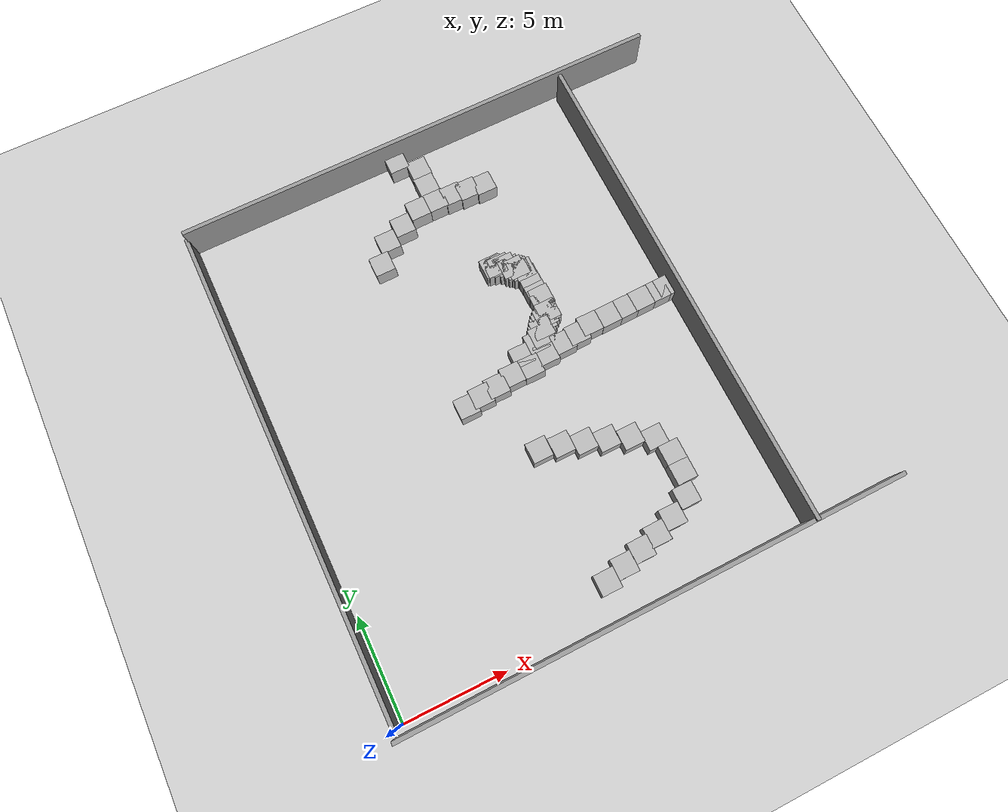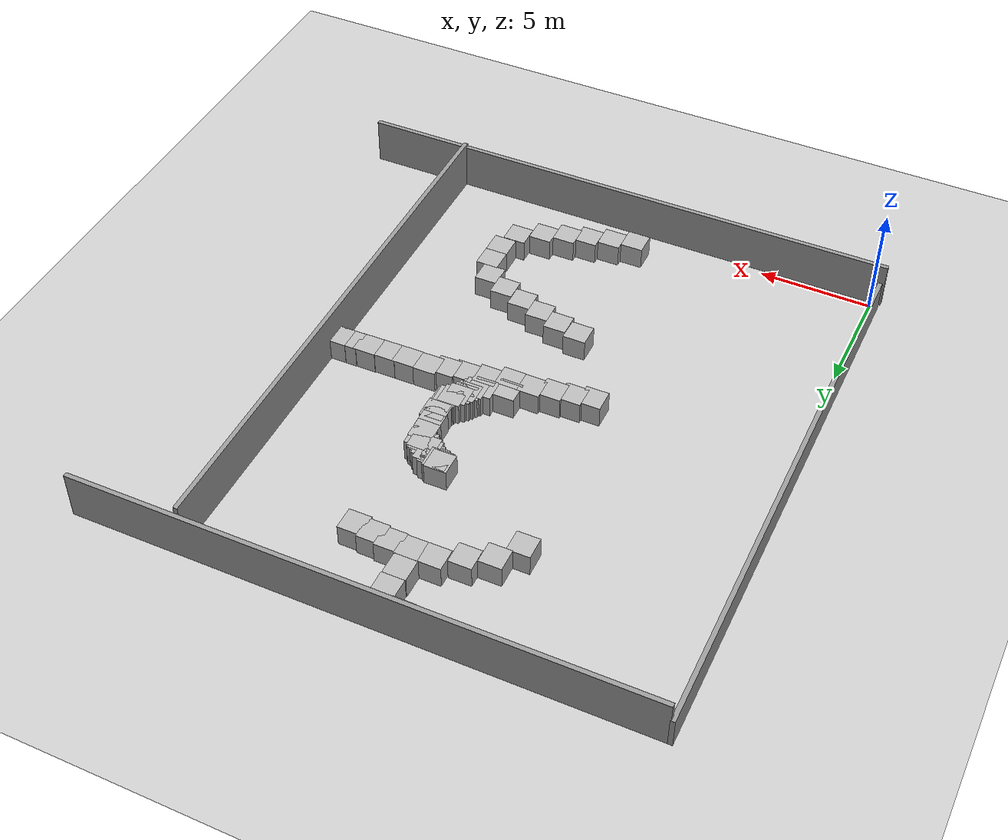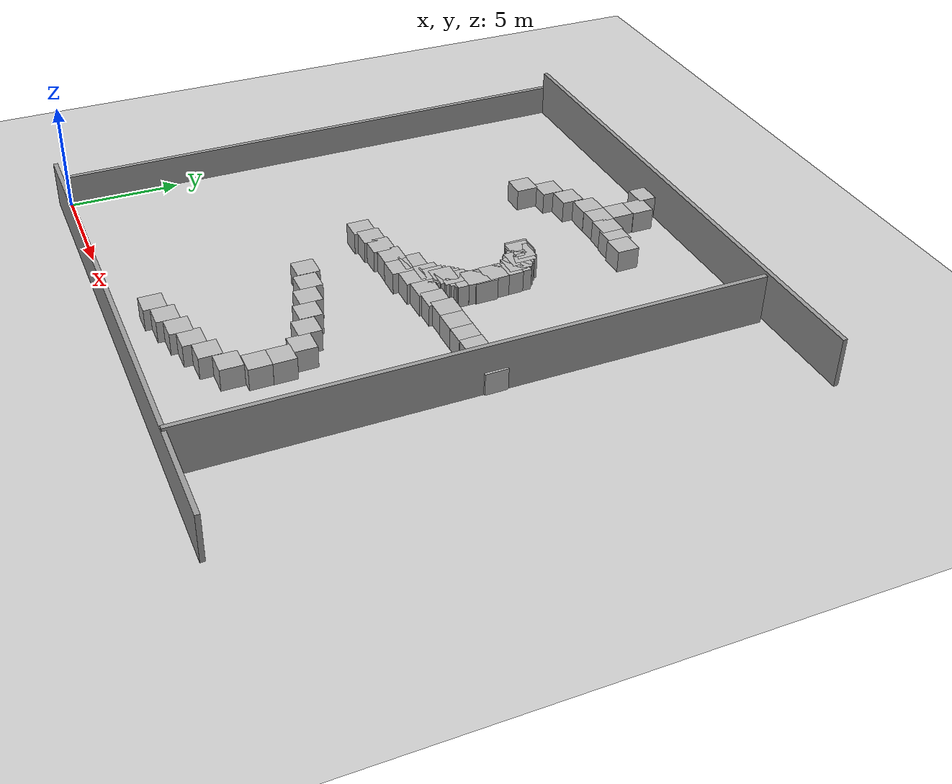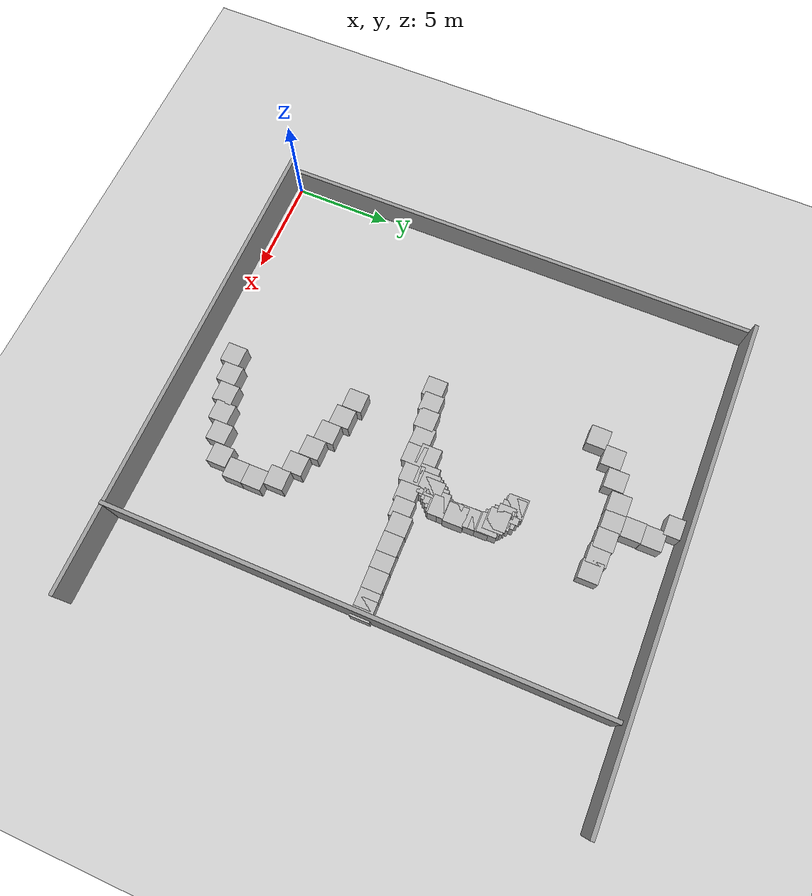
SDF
<sdf version="1.6">
 <world name="default">
  <light name="sun" type="directional">
   <pose>0 0 10 0 -0 0</pose>
   <diffuse>0.8 0.8 0.8 1</diffuse>
   <specular>0.2 0.2 0.2 1</specular>
   <attenuation>
    <range>1000</range>
    <constant>0.9</constant>
    <linear>0.01</linear>
    <quadratic>0.001</quadratic>
   </attenuation>
   <direction>-0.5 0.1 -0.9</direction>
  </light>
  <model name="ground_plane">
   <static>1</static>
   <link name="link">
    <collision name="collision">
     <geometry><plane><normal>0 0 1</normal><size>100 100</size></plane></geometry>
     <surface><friction><ode><mu>50</mu><mu2>25</mu2></ode></friction></surface>
    </collision>
    <visual name="visual">
     <cast_shadows>0</cast_shadows>
     <geometry><plane><normal>0 0 1</normal><size>100 100</size></plane></geometry>
     <material>
      <script><uri>file://media/materials/scripts/gazebo.material</uri><name>Gazebo/Grey</name></script>
     </material>
    </visual>
    <velocity_decay><linear>0</linear><angular>0</angular></velocity_decay>
   </link>
  </model>
  <physics name="default_physics" default="0" type="ode">
   <max_step_size>0.001</max_step_size>
   <real_time_factor>1</real_time_factor>
   <real_time_update_rate>1000</real_time_update_rate>
  </physics>
  <scene><ambient>0.4 0.4 0.4 1</ambient><background>0.7 0.7 0.7 1</background><shadows>0</shadows></scene>
  <spherical_coordinates>
   <surface_model>EARTH_WGS84</surface_model>
   <latitude_deg>0</latitude_deg>
   <longitude_deg>0</longitude_deg>
   <elevation>0</elevation>
   <heading_deg>0</heading_deg>
  </spherical_coordinates>
  <gravity>0 0 -9.8</gravity>
  <magnetic_field>6e-06 2.3e-05 -4.2e-05</magnetic_field>
  <atmosphere type="adiabatic"/>
  <model name="grey_wall_6_0_clone">
   <link name="link">
    <pose>11.2261 0.490097 1.4 0 -0 0</pose>
    <velocity_decay><linear>0</linear><angular>0</angular></velocity_decay>
    <inertial>
     <inertia><ixx>nan</ixx><ixy>0</ixy><ixz>0</ixz><iyy>nan</iyy><iyz>0</iyz><izz>nan</izz></inertia>
     <mass>0</mass>
    </inertial>
    <visual name="visual">
     <cast_shadows>0</cast_shadows>
     <geometry><box><size>24.8883 0.2 2.63649</size></box></geometry>
     <material>
      <script>
       <uri>model://grey_wall/materials/scripts</uri>
       <uri>model://grey_wall/materials/textures</uri>
       <name>vrc/grey_wall</name>
      </script>
      <ambient>1 1 1 1</ambient>
      <diffuse>1 1 1 1</diffuse>
      <specular>0 0 0 1</specular>
      <emissive>0 0 0 1</emissive>
     </material>
    </visual>
    <collision name="collision">
     <geometry><box><size>24.8883 0.2 2.63649</size></box></geometry>
     <surface>
      <friction>
       <ode><mu>1</mu><mu2>1</mu2><fdir1>0 0 0</fdir1><slip1>0</slip1><slip2>0</slip2></ode>
       <torsional>
        <coefficient>1</coefficient>
        <patch_radius>0</patch_radius>
        <surface_radius>0</surface_radius>
        <use_patch_radius>1</use_patch_radius>
        <ode><slip>0</slip></ode>
       </torsional>
      </friction>
      <bounce><restitution_coefficient>0</restitution_coefficient><threshold>1e+06</threshold></bounce>
      <contact>
       <collide_without_contact>0</collide_without_contact>
       <collide_without_contact_bitmask>1</collide_without_contact_bitmask>
       <collide_bitmask>1</collide_bitmask>
       <ode>
        <soft_cfm>0</soft_cfm>
        <soft_erp>0.2</soft_erp>
        <kp>1e+13</kp>
        <kd>1</kd>
        <max_vel>0.01</max_vel>
        <min_depth>0</min_depth>
       </ode>
       <bullet>
        <split_impulse>1</split_impulse>
        <split_impulse_penetration_threshold>-0.01</split_impulse_penetration_threshold>
        <soft_cfm>0</soft_cfm>
        <soft_erp>0.2</soft_erp>
        <kp>1e+13</kp>
        <kd>1</kd>
       </bullet>
      </contact>
     </surface>
    </collision>
   </link>
   <static>1</static>
   <pose>0.225116 1.13719 -1.33094 0 -0 1.57597</pose>
  </model>
  <model name="grey_wall_6_0_clone_0">
   <link name="link">
    <pose>11.2261 0.490097 1.4 0 -0 0</pose>
    <velocity_decay><linear>0</linear><angular>0</angular></velocity_decay>
    <inertial>
     <inertia><ixx>nan</ixx><ixy>0</ixy><ixz>0</ixz><iyy>nan</iyy><iyz>0</iyz><izz>nan</izz></inertia>
     <mass>0</mass>
    </inertial>
    <visual name="visual">
     <cast_shadows>0</cast_shadows>
     <geometry><box><size>24.8883 0.2 2.63649</size></box></geometry>
     <material>
      <script>
       <uri>model://grey_wall/materials/scripts</uri>
       <uri>model://grey_wall/materials/textures</uri>
       <name>vrc/grey_wall</name>
      </script>
      <ambient>1 1 1 1</ambient>
      <diffuse>1 1 1 1</diffuse>
      <specular>0 0 0 1</specular>
      <emissive>0 0 0 1</emissive>
     </material>
    </visual>
    <collision name="collision">
     <geometry><box><size>24.8883 0.2 2.63649</size></box></geometry>
     <surface>
      <friction>
       <ode><mu>1</mu><mu2>1</mu2><fdir1>0 0 0</fdir1><slip1>0</slip1><slip2>0</slip2></ode>
       <torsional>
        <coefficient>1</coefficient>
        <patch_radius>0</patch_radius>
        <surface_radius>0</surface_radius>
        <use_patch_radius>1</use_patch_radius>
        <ode><slip>0</slip></ode>
       </torsional>
      </friction>
      <bounce><restitution_coefficient>0</restitution_coefficient><threshold>1e+06</threshold></bounce>
      <contact>
       <collide_without_contact>0</collide_without_contact>
       <collide_without_contact_bitmask>1</collide_without_contact_bitmask>
       <collide_bitmask>1</collide_bitmask>
       <ode>
        <soft_cfm>0</soft_cfm>
        <soft_erp>0.2</soft_erp>
        <kp>1e+13</kp>
        <kd>1</kd>
        <max_vel>0.01</max_vel>
        <min_depth>0</min_depth>
       </ode>
       <bullet>
        <split_impulse>1</split_impulse>
        <split_impulse_penetration_threshold>-0.01</split_impulse_penetration_threshold>
        <soft_cfm>0</soft_cfm>
        <soft_erp>0.2</soft_erp>
        <kp>1e+13</kp>
        <kd>1</kd>
       </bullet>
      </contact>
     </surface>
    </collision>
   </link>
   <static>1</static>
   <pose>23.3321 25.3557 -0.538015 0 0 -3.13457</pose>
  </model>
  <model name="grey_wall_6_0_clone_clone">
   <link name="link">
    <pose>11.2261 0.490097 1.4 0 -0 0</pose>
    <velocity_decay><linear>0</linear><angular>0</angular></velocity_decay>
    <inertial>
     <inertia><ixx>nan</ixx><ixy>0</ixy><ixz>0</ixz><iyy>nan</iyy><iyz>0</iyz><izz>nan</izz></inertia>
     <mass>0</mass>
    </inertial>
    <visual name="visual">
     <cast_shadows>0</cast_shadows>
     <geometry><box><size>24.8883 0.2 2.63649</size></box></geometry>
     <material>
      <script>
       <uri>model://grey_wall/materials/scripts</uri>
       <uri>model://grey_wall/materials/textures</uri>
       <name>vrc/grey_wall</name>
      </script>
      <ambient>1 1 1 1</ambient>
      <diffuse>1 1 1 1</diffuse>
      <specular>0 0 0 1</specular>
      <emissive>0 0 0 1</emissive>
     </material>
    </visual>
    <collision name="collision">
     <geometry><box><size>24.8883 0.2 2.63649</size></box></geometry>
     <surface>
      <friction>
       <ode><mu>1</mu><mu2>1</mu2><fdir1>0 0 0</fdir1><slip1>0</slip1><slip2>0</slip2></ode>
       <torsional>
        <coefficient>1</coefficient>
        <patch_radius>0</patch_radius>
        <surface_radius>0</surface_radius>
        <use_patch_radius>1</use_patch_radius>
        <ode><slip>0</slip></ode>
       </torsional>
      </friction>
      <bounce><restitution_coefficient>0</restitution_coefficient><threshold>1e+06</threshold></bounce>
      <contact>
       <collide_without_contact>0</collide_without_contact>
       <collide_without_contact_bitmask>1</collide_without_contact_bitmask>
       <collide_bitmask>1</collide_bitmask>
       <ode>
        <soft_cfm>0</soft_cfm>
        <soft_erp>0.2</soft_erp>
        <kp>1e+13</kp>
        <kd>1</kd>
        <max_vel>0.01</max_vel>
        <min_depth>0</min_depth>
       </ode>
       <bullet>
        <split_impulse>1</split_impulse>
        <split_impulse_penetration_threshold>-0.01</split_impulse_penetration_threshold>
        <soft_cfm>0</soft_cfm>
        <soft_erp>0.2</soft_erp>
        <kp>1e+13</kp>
        <kd>1</kd>
       </bullet>
      </contact>
     </surface>
    </collision>
   </link>
   <static>1</static>
   <pose>20.3989 0.883186 -0.494414 0 -0 1.57597</pose>
  </model>
  <model name="obby_clone_clone_1_clone_clone_0">
   <pose>10.5723 1.42444 0.5 0 -0 0.007022</pose>
   <static>1</static>
   <link name="link">
    <inertial>
     <mass>1</mass>
     <inertia><ixx>0.083</ixx><ixy>0</ixy><ixz>0</ixz><iyy>0.083</iyy><iyz>0</iyz><izz>0.083</izz></inertia>
    </inertial>
    <collision name="collision"><geometry><box><size>1 1 1</size></box></geometry></collision>
    <visual name="visual"><geometry><box><size>1 1 1</size></box></geometry></visual>
   </link>
  </model>
  <model name="obby_clone_clone_1_clone_clone_1">
   <pose>11.5702 1.71606 0.5 0 -0 0.007022</pose>
   <static>1</static>
   <link name="link">
    <inertial>
     <mass>1</mass>
     <inertia><ixx>0.083</ixx><ixy>0</ixy><ixz>0</ixz><iyy>0.083</iyy><iyz>0</iyz><izz>0.083</izz></inertia>
    </inertial>
    <collision name="collision"><geometry><box><size>1 1 1</size></box></geometry></collision>
    <visual name="visual"><geometry><box><size>1 1 1</size></box></geometry></visual>
   </link>
  </model>
  <model name="obby_clone_clone_1_clone_clone_2">
   <pose>12.5711 2.00742 0.5 0 -0 0.007022</pose>
   <static>1</static>
   <link name="link">
    <inertial>
     <mass>1</mass>
     <inertia><ixx>0.083</ixx><ixy>0</ixy><ixz>0</ixz><iyy>0.083</iyy><iyz>0</iyz><izz>0.083</izz></inertia>
    </inertial>
    <collision name="collision"><geometry><box><size>1 1 1</size></box></geometry></collision>
    <visual name="visual"><geometry><box><size>1 1 1</size></box></geometry></visual>
   </link>
  </model>
  <model name="obby_clone_clone_1_clone_clone_3">
   <pose>13.5233 2.29543 0.5 0 -0 0.007022</pose>
   <static>1</static>
   <link name="link">
    <inertial>
     <mass>1</mass>
     <inertia><ixx>0.083</ixx><ixy>0</ixy><ixz>0</ixz><iyy>0.083</iyy><iyz>0</iyz><izz>0.083</izz></inertia>
    </inertial>
    <collision name="collision"><geometry><box><size>1 1 1</size></box></geometry></collision>
    <visual name="visual"><geometry><box><size>1 1 1</size></box></geometry></visual>
   </link>
  </model>
  <model name="obby_clone_clone_1_clone_clone_4">
   <pose>15.9048 5.24384 0.5 0 -0 0.007022</pose>
   <static>1</static>
   <link name="link">
    <inertial>
     <mass>1</mass>
     <inertia><ixx>0.083</ixx><ixy>0</ixy><ixz>0</ixz><iyy>0.083</iyy><iyz>0</iyz><izz>0.083</izz></inertia>
    </inertial>
    <collision name="collision"><geometry><box><size>1 1 1</size></box></geometry></collision>
    <visual name="visual"><geometry><box><size>1 1 1</size></box></geometry></visual>
   </link>
  </model>
  <model name="obby_clone_clone_1_clone_clone_5">
   <pose>8.37833 20.552 0.5 0 -0 0.007022</pose>
   <static>1</static>
   <link name="link">
    <inertial>
     <mass>1</mass>
     <inertia><ixx>0.083</ixx><ixy>0</ixy><ixz>0</ixz><iyy>0.083</iyy><iyz>0</iyz><izz>0.083</izz></inertia>
    </inertial>
    <collision name="collision"><geometry><box><size>1 1 1</size></box></geometry></collision>
    <visual name="visual"><geometry><box><size>1 1 1</size></box></geometry></visual>
   </link>
  </model>
  <model name="obby_clone_clone_1_clone_clone_6">
   <pose>7.66262 19.5849 0.5 0 -0 0.007022</pose>
   <static>1</static>
   <link name="link">
    <inertial>
     <mass>1</mass>
     <inertia><ixx>0.083</ixx><ixy>0</ixy><ixz>0</ixz><iyy>0.083</iyy><iyz>0</iyz><izz>0.083</izz></inertia>
    </inertial>
    <collision name="collision"><geometry><box><size>1 1 1</size></box></geometry></collision>
    <visual name="visual"><geometry><box><size>1 1 1</size></box></geometry></visual>
   </link>
  </model>
  <model name="obby_clone_clone_1_clone_clone_20_clone_2">
   <pose>15.5022 6.21552 0.499995 1e-05 -0 0.007022</pose>
   <static>1</static>
   <link name="link">
    <inertial>
     <mass>1</mass>
     <inertia><ixx>0.083</ixx><ixy>0</ixy><ixz>0</ixz><iyy>0.083</iyy><iyz>0</iyz><izz>0.083</izz></inertia>
    </inertial>
    <collision name="collision"><geometry><box><size>1 1 1</size></box></geometry></collision>
    <visual name="visual"><geometry><box><size>1 1 1</size></box></geometry></visual>
   </link>
  </model>
  <model name="obby_clone_clone_1_clone_clone_20_clone_9_clone_0">
   <pose>14.523 6.72604 0.5 0 -0 0.007881</pose>
   <static>1</static>
   <link name="link">
    <inertial>
     <mass>1</mass>
     <inertia><ixx>0.083</ixx><ixy>0</ixy><ixz>0</ixz><iyy>0.083</iyy><iyz>0</iyz><izz>0.083</izz></inertia>
    </inertial>
    <collision name="collision"><geometry><box><size>1 1 1</size></box></geometry></collision>
    <visual name="visual"><geometry><box><size>1 1 1</size></box></geometry></visual>
   </link>
  </model>
  <model name="obby_clone_clone_1_clone_clone_20_clone_9_clone_3">
   <pose>13.5011 7.11714 0.5 0 -0 0.004311</pose>
   <static>1</static>
   <link name="link">
    <inertial>
     <mass>1</mass>
     <inertia><ixx>0.083</ixx><ixy>0</ixy><ixz>0</ixz><iyy>0.083</iyy><iyz>0</iyz><izz>0.083</izz></inertia>
    </inertial>
    <collision name="collision"><geometry><box><size>1 1 1</size></box></geometry></collision>
    <visual name="visual"><geometry><box><size>1 1 1</size></box></geometry></visual>
   </link>
  </model>
  <model name="obby_clone_clone_1_clone_clone_20_clone_9_clone_3_clone_2">
   <pose>12.4996 7.45785 0.5 0 -0 0.004311</pose>
   <static>1</static>
   <link name="link">
    <inertial>
     <mass>1</mass>
     <inertia><ixx>0.083</ixx><ixy>0</ixy><ixz>0</ixz><iyy>0.083</iyy><iyz>0</iyz><izz>0.083</izz></inertia>
    </inertial>
    <collision name="collision"><geometry><box><size>1 1 1</size></box></geometry></collision>
    <visual name="visual"><geometry><box><size>1 1 1</size></box></geometry></visual>
   </link>
  </model>
  <model name="grey_wall_6_0_clone_0_clone">
   <link name="link">
    <pose>11.2261 0.490097 1.4 0 -0 0</pose>
    <velocity_decay><linear>0</linear><angular>0</angular></velocity_decay>
    <inertial>
     <inertia><ixx>nan</ixx><ixy>0</ixy><ixz>0</ixz><iyy>nan</iyy><iyz>0</iyz><izz>nan</izz></inertia>
     <mass>0</mass>
    </inertial>
    <visual name="visual">
     <cast_shadows>0</cast_shadows>
     <geometry><box><size>24.8883 0.2 2.63649</size></box></geometry>
     <material>
      <script>
       <uri>model://grey_wall/materials/scripts</uri>
       <uri>model://grey_wall/materials/textures</uri>
       <name>vrc/grey_wall</name>
      </script>
      <ambient>1 1 1 1</ambient>
      <diffuse>1 1 1 1</diffuse>
      <specular>0 0 0 1</specular>
      <emissive>0 0 0 1</emissive>
     </material>
    </visual>
    <collision name="collision">
     <geometry><box><size>24.8883 0.2 2.63649</size></box></geometry>
     <surface>
      <friction>
       <ode><mu>1</mu><mu2>1</mu2><fdir1>0 0 0</fdir1><slip1>0</slip1><slip2>0</slip2></ode>
       <torsional>
        <coefficient>1</coefficient>
        <patch_radius>0</patch_radius>
        <surface_radius>0</surface_radius>
        <use_patch_radius>1</use_patch_radius>
        <ode><slip>0</slip></ode>
       </torsional>
      </friction>
      <bounce><restitution_coefficient>0</restitution_coefficient><threshold>1e+06</threshold></bounce>
      <contact>
       <collide_without_contact>0</collide_without_contact>
       <collide_without_contact_bitmask>1</collide_without_contact_bitmask>
       <collide_bitmask>1</collide_bitmask>
       <ode>
        <soft_cfm>0</soft_cfm>
        <soft_erp>0.2</soft_erp>
        <kp>1e+13</kp>
        <kd>1</kd>
        <max_vel>0.01</max_vel>
        <min_depth>0</min_depth>
       </ode>
       <bullet>
        <split_impulse>1</split_impulse>
        <split_impulse_penetration_threshold>-0.01</split_impulse_penetration_threshold>
        <soft_cfm>0</soft_cfm>
        <soft_erp>0.2</soft_erp>
        <kp>1e+13</kp>
        <kd>1</kd>
       </bullet>
      </contact>
     </surface>
    </collision>
   </link>
   <static>1</static>
   <pose>23.2596 0.248876 -0.621727 0 0 -3.13457</pose>
  </model>
  <model name="obby_clone_clone_1_clone_clone_20_clone_9_clone_3_clone_0_clone_0">
   <pose>13.3019 13.3563 0.499995 -1e-05 0 0.00506</pose>
   <static>1</static>
   <link name="link">
    <inertial>
     <mass>1</mass>
     <inertia><ixx>0.083</ixx><ixy>0</ixy><ixz>0</ixz><iyy>0.083</iyy><iyz>0</iyz><izz>0.083</izz></inertia>
    </inertial>
    <collision name="collision"><geometry><box><size>1 1 1</size></box></geometry></collision>
    <visual name="visual"><geometry><box><size>1 1 1</size></box></geometry></visual>
   </link>
  </model>
  <model name="obby_clone_clone_1_clone_clone_20_clone_9_clone_3_clone_0_clone_1">
   <pose>13.1922 13.2168 0.5 0 -0 0.005066</pose>
   <static>1</static>
   <link name="link">
    <inertial>
     <mass>1</mass>
     <inertia><ixx>0.083</ixx><ixy>0</ixy><ixz>0</ixz><iyy>0.083</iyy><iyz>0</iyz><izz>0.083</izz></inertia>
    </inertial>
    <collision name="collision"><geometry><box><size>1 1 1</size></box></geometry></collision>
    <visual name="visual"><geometry><box><size>1 1 1</size></box></geometry></visual>
   </link>
  </model>
  <model name="obby_clone_clone_1_clone_clone_20_clone_9_clone_3_clone_0_clone_2">
   <pose>13.0769 13.0446 0.499995 -0 -1e-05 0.005066</pose>
   <static>1</static>
   <link name="link">
    <inertial>
     <mass>1</mass>
     <inertia><ixx>0.083</ixx><ixy>0</ixy><ixz>0</ixz><iyy>0.083</iyy><iyz>0</iyz><izz>0.083</izz></inertia>
    </inertial>
    <collision name="collision"><geometry><box><size>1 1 1</size></box></geometry></collision>
    <visual name="visual"><geometry><box><size>1 1 1</size></box></geometry></visual>
   </link>
  </model>
  <model name="obby_clone_clone_1_clone_clone_20_clone_9_clone_3_clone_0_clone_3">
   <pose>12.9839 12.9008 0.5 0 -0 0.01342</pose>
   <static>1</static>
   <link name="link">
    <inertial>
     <mass>1</mass>
     <inertia><ixx>0.083</ixx><ixy>0</ixy><ixz>0</ixz><iyy>0.083</iyy><iyz>0</iyz><izz>0.083</izz></inertia>
    </inertial>
    <collision name="collision"><geometry><box><size>1 1 1</size></box></geometry></collision>
    <visual name="visual"><geometry><box><size>1 1 1</size></box></geometry></visual>
   </link>
  </model>
  <model name="obby_clone_clone_1_clone_clone_20_clone_9_clone_3_clone_0_clone_4">
   <pose>12.6592 12.7242 0.499995 -1e-05 -0 0.014326</pose>
   <static>1</static>
   <link name="link">
    <inertial>
     <mass>1</mass>
     <inertia><ixx>0.083</ixx><ixy>0</ixy><ixz>0</ixz><iyy>0.083</iyy><iyz>0</iyz><izz>0.083</izz></inertia>
    </inertial>
    <collision name="collision"><geometry><box><size>1 1 1</size></box></geometry></collision>
    <visual name="visual"><geometry><box><size>1 1 1</size></box></geometry></visual>
   </link>
  </model>
  <model name="obby_clone_clone_1_clone_clone_20_clone_9_clone_3_clone_0_clone_5">
   <pose>11.8937 11.7513 0.499995 1e-05 -0 0.005061</pose>
   <static>1</static>
   <link name="link">
    <inertial>
     <mass>1</mass>
     <inertia><ixx>0.083</ixx><ixy>0</ixy><ixz>0</ixz><iyy>0.083</iyy><iyz>0</iyz><izz>0.083</izz></inertia>
    </inertial>
    <collision name="collision"><geometry><box><size>1 1 1</size></box></geometry></collision>
    <visual name="visual"><geometry><box><size>1 1 1</size></box></geometry></visual>
   </link>
  </model>
  <model name="obby_clone_clone_1_clone_clone_20_clone_9_clone_3_clone_0_clone_6">
   <pose>12.8257 12.0133 0.499995 1e-05 -0 0.005061</pose>
   <static>1</static>
   <link name="link">
    <inertial>
     <mass>1</mass>
     <inertia><ixx>0.083</ixx><ixy>0</ixy><ixz>0</ixz><iyy>0.083</iyy><iyz>0</iyz><izz>0.083</izz></inertia>
    </inertial>
    <collision name="collision"><geometry><box><size>1 1 1</size></box></geometry></collision>
    <visual name="visual"><geometry><box><size>1 1 1</size></box></geometry></visual>
   </link>
  </model>
  <model name="obby_clone_clone_1_clone_clone_20_clone_9_clone_3_clone_0_clone_6_clone">
   <pose>11.7345 12.4159 0.499995 -1e-05 0 0.005061</pose>
   <static>1</static>
   <link name="link">
    <inertial>
     <mass>1</mass>
     <inertia><ixx>0.083</ixx><ixy>0</ixy><ixz>0</ixz><iyy>0.083</iyy><iyz>0</iyz><izz>0.083</izz></inertia>
    </inertial>
    <collision name="collision"><geometry><box><size>1 1 1</size></box></geometry></collision>
    <visual name="visual"><geometry><box><size>1 1 1</size></box></geometry></visual>
   </link>
  </model>
  <model name="obby_clone_clone_1_clone_clone_20_clone_9_clone_3_clone_0_clone_6_clone_0">
   <pose>10.9123 11.7594 0.5 0 -0 0.005061</pose>
   <static>1</static>
   <link name="link">
    <inertial>
     <mass>1</mass>
     <inertia><ixx>0.083</ixx><ixy>0</ixy><ixz>0</ixz><iyy>0.083</iyy><iyz>0</iyz><izz>0.083</izz></inertia>
    </inertial>
    <collision name="collision"><geometry><box><size>1 1 1</size></box></geometry></collision>
    <visual name="visual"><geometry><box><size>1 1 1</size></box></geometry></visual>
   </link>
  </model>
  <model name="obby_clone_clone_1_clone_clone_20_clone_9_clone_3_clone_0_clone_6_clone_1">
   <pose>11.4978 7.79447 0.5 0 -0 0.005061</pose>
   <static>1</static>
   <link name="link">
    <inertial>
     <mass>1</mass>
     <inertia><ixx>0.083</ixx><ixy>0</ixy><ixz>0</ixz><iyy>0.083</iyy><iyz>0</iyz><izz>0.083</izz></inertia>
    </inertial>
    <collision name="collision"><geometry><box><size>1 1 1</size></box></geometry></collision>
    <visual name="visual"><geometry><box><size>1 1 1</size></box></geometry></visual>
   </link>
  </model>
  <model name="obby_clone_clone_1_clone_clone_20_clone_9_clone_3_clone_0_clone_6_clone_2">
   <pose>10.4764 8.01479 0.499995 -1e-05 0 0.005061</pose>
   <static>1</static>
   <link name="link">
    <inertial>
     <mass>1</mass>
     <inertia><ixx>0.083</ixx><ixy>0</ixy><ixz>0</ixz><iyy>0.083</iyy><iyz>0</iyz><izz>0.083</izz></inertia>
    </inertial>
    <collision name="collision"><geometry><box><size>1 1 1</size></box></geometry></collision>
    <visual name="visual"><geometry><box><size>1 1 1</size></box></geometry></visual>
   </link>
  </model>
  <model name="obby_clone_clone_1_clone_clone_20_clone_9_clone_3_clone_0_clone_6_clone_3">
   <pose>8.36272 11.3252 0.499995 -1e-05 0 0.005061</pose>
   <static>1</static>
   <link name="link">
    <inertial>
     <mass>1</mass>
     <inertia><ixx>0.083</ixx><ixy>0</ixy><ixz>0</ixz><iyy>0.083</iyy><iyz>0</iyz><izz>0.083</izz></inertia>
    </inertial>
    <collision name="collision"><geometry><box><size>1 1 1</size></box></geometry></collision>
    <visual name="visual"><geometry><box><size>1 1 1</size></box></geometry></visual>
   </link>
  </model>
  <model name="obby_clone_clone_1_clone_clone_20_clone_9_clone_3_clone_0_clone_6_clone_4">
   <pose>9.17884 11.4824 0.5 0 -0 0.005061</pose>
   <static>1</static>
   <link name="link">
    <inertial>
     <mass>1</mass>
     <inertia><ixx>0.083</ixx><ixy>0</ixy><ixz>0</ixz><iyy>0.083</iyy><iyz>0</iyz><izz>0.083</izz></inertia>
    </inertial>
    <collision name="collision"><geometry><box><size>1 1 1</size></box></geometry></collision>
    <visual name="visual"><geometry><box><size>1 1 1</size></box></geometry></visual>
   </link>
  </model>
  <model name="obby_clone_clone_1_clone_clone_20_clone_9_clone_3_clone_0_clone_6_clone_5">
   <pose>10.0266 11.5994 0.5 0 -0 0.005061</pose>
   <static>1</static>
   <link name="link">
    <inertial>
     <mass>1</mass>
     <inertia><ixx>0.083</ixx><ixy>0</ixy><ixz>0</ixz><iyy>0.083</iyy><iyz>0</iyz><izz>0.083</izz></inertia>
    </inertial>
    <collision name="collision"><geometry><box><size>1 1 1</size></box></geometry></collision>
    <visual name="visual"><geometry><box><size>1 1 1</size></box></geometry></visual>
   </link>
  </model>
  <model name="obby_clone_clone_1_clone_clone_3_clone">
   <pose>14.5131 2.66763 0.5 0 -0 0.007022</pose>
   <static>1</static>
   <link name="link">
    <inertial>
     <mass>1</mass>
     <inertia><ixx>0.083</ixx><ixy>0</ixy><ixz>0</ixz><iyy>0.083</iyy><iyz>0</iyz><izz>0.083</izz></inertia>
    </inertial>
    <collision name="collision"><geometry><box><size>1 1 1</size></box></geometry></collision>
    <visual name="visual"><geometry><box><size>1 1 1</size></box></geometry></visual>
   </link>
  </model>
  <model name="obby_clone_clone_1_clone_clone_3_clone_clone">
   <pose>15.5279 3.22794 0.5 0 -0 0.007022</pose>
   <static>1</static>
   <link name="link">
    <inertial>
     <mass>1</mass>
     <inertia><ixx>0.083</ixx><ixy>0</ixy><ixz>0</ixz><iyy>0.083</iyy><iyz>0</iyz><izz>0.083</izz></inertia>
    </inertial>
    <collision name="collision"><geometry><box><size>1 1 1</size></box></geometry></collision>
    <visual name="visual"><geometry><box><size>1 1 1</size></box></geometry></visual>
   </link>
  </model>
  <model name="obby_clone_clone_1_clone_clone_3_clone_clone_0">
   <pose>15.9095 4.25674 0.5 0 -0 0.007022</pose>
   <static>1</static>
   <link name="link">
    <inertial>
     <mass>1</mass>
     <inertia><ixx>0.083</ixx><ixy>0</ixy><ixz>0</ixz><iyy>0.083</iyy><iyz>0</iyz><izz>0.083</izz></inertia>
    </inertial>
    <collision name="collision"><geometry><box><size>1 1 1</size></box></geometry></collision>
    <visual name="visual"><geometry><box><size>1 1 1</size></box></geometry></visual>
   </link>
  </model>
  <model name="obby_clone_clone_1_clone_clone_5_clone">
   <pose>9.3944 21.0372 0.5 0 -0 0.007022</pose>
   <static>1</static>
   <link name="link">
    <inertial>
     <mass>1</mass>
     <inertia><ixx>0.083</ixx><ixy>0</ixy><ixz>0</ixz><iyy>0.083</iyy><iyz>0</iyz><izz>0.083</izz></inertia>
    </inertial>
    <collision name="collision"><geometry><box><size>1 1 1</size></box></geometry></collision>
    <visual name="visual"><geometry><box><size>1 1 1</size></box></geometry></visual>
   </link>
  </model>
  <model name="obby_clone_clone_1_clone_clone_5_clone_0">
   <pose>10.43 21.5291 0.5 0 -0 0.007022</pose>
   <static>1</static>
   <link name="link">
    <inertial>
     <mass>1</mass>
     <inertia><ixx>0.083</ixx><ixy>0</ixy><ixz>0</ixz><iyy>0.083</iyy><iyz>0</iyz><izz>0.083</izz></inertia>
    </inertial>
    <collision name="collision"><geometry><box><size>1 1 1</size></box></geometry></collision>
    <visual name="visual"><geometry><box><size>1 1 1</size></box></geometry></visual>
   </link>
  </model>
  <model name="obby_clone_clone_1_clone_clone_5_clone_0_clone">
   <pose>11.4147 21.5437 0.5 0 -0 0.007022</pose>
   <static>1</static>
   <link name="link">
    <inertial>
     <mass>1</mass>
     <inertia><ixx>0.083</ixx><ixy>0</ixy><ixz>0</ixz><iyy>0.083</iyy><iyz>0</iyz><izz>0.083</izz></inertia>
    </inertial>
    <collision name="collision"><geometry><box><size>1 1 1</size></box></geometry></collision>
    <visual name="visual"><geometry><box><size>1 1 1</size></box></geometry></visual>
   </link>
  </model>
  <model name="obby_clone_clone_1_clone_clone_5_clone_0_clone_0">
   <pose>12.3077 21.5119 0.5 0 -0 0.007022</pose>
   <static>1</static>
   <link name="link">
    <inertial>
     <mass>1</mass>
     <inertia><ixx>0.083</ixx><ixy>0</ixy><ixz>0</ixz><iyy>0.083</iyy><iyz>0</iyz><izz>0.083</izz></inertia>
    </inertial>
    <collision name="collision"><geometry><box><size>1 1 1</size></box></geometry></collision>
    <visual name="visual"><geometry><box><size>1 1 1</size></box></geometry></visual>
   </link>
  </model>
  <model name="obby_clone_clone_1_clone_clone_5_clone_0_clone_1">
   <pose>13.1003 21.4397 0.5 0 -0 0.007022</pose>
   <static>1</static>
   <link name="link">
    <inertial>
     <mass>1</mass>
     <inertia><ixx>0.083</ixx><ixy>0</ixy><ixz>0</ixz><iyy>0.083</iyy><iyz>0</iyz><izz>0.083</izz></inertia>
    </inertial>
    <collision name="collision"><geometry><box><size>1 1 1</size></box></geometry></collision>
    <visual name="visual"><geometry><box><size>1 1 1</size></box></geometry></visual>
   </link>
  </model>
  <model name="obby_clone_clone_1_clone_clone_5_clone_0_clone_2">
   <pose>13.9516 21.357 0.5 0 -0 0.007022</pose>
   <static>1</static>
   <link name="link">
    <inertial>
     <mass>1</mass>
     <inertia><ixx>0.083</ixx><ixy>0</ixy><ixz>0</ixz><iyy>0.083</iyy><iyz>0</iyz><izz>0.083</izz></inertia>
    </inertial>
    <collision name="collision"><geometry><box><size>1 1 1</size></box></geometry></collision>
    <visual name="visual"><geometry><box><size>1 1 1</size></box></geometry></visual>
   </link>
  </model>
  <model name="obby_clone_clone_1_clone_clone_20_clone_9_clone_3_clone_0_clone_3_clone">
   <pose>13.799 12.1699 0.499995 0 1e-05 0.013888</pose>
   <static>1</static>
   <link name="link">
    <inertial>
     <mass>1</mass>
     <inertia><ixx>0.083</ixx><ixy>0</ixy><ixz>0</ixz><iyy>0.083</iyy><iyz>0</iyz><izz>0.083</izz></inertia>
    </inertial>
    <collision name="collision"><geometry><box><size>1 1 1</size></box></geometry></collision>
    <visual name="visual"><geometry><box><size>1 1 1</size></box></geometry></visual>
   </link>
  </model>
  <model name="obby_clone_clone_1_clone_clone_20_clone_9_clone_3_clone_0_clone_3_clone_0">
   <pose>15.3517 12.429 0.5 0 -0 0.013935</pose>
   <static>1</static>
   <link name="link">
    <inertial>
     <mass>1</mass>
     <inertia><ixx>0.083</ixx><ixy>0</ixy><ixz>0</ixz><iyy>0.083</iyy><iyz>0</iyz><izz>0.083</izz></inertia>
    </inertial>
    <collision name="collision"><geometry><box><size>1 1 1</size></box></geometry></collision>
    <visual name="visual"><geometry><box><size>1 1 1</size></box></geometry></visual>
   </link>
  </model>
  <model name="obby_clone_clone_1_clone_clone_20_clone_9_clone_3_clone_0_clone_3_clone_1">
   <pose>16.3374 12.4309 0.499997 0 -9e-06 0.013996</pose>
   <static>1</static>
   <link name="link">
    <inertial>
     <mass>1</mass>
     <inertia><ixx>0.083</ixx><ixy>0</ixy><ixz>0</ixz><iyy>0.083</iyy><iyz>0</iyz><izz>0.083</izz></inertia>
    </inertial>
    <collision name="collision"><geometry><box><size>1 1 1</size></box></geometry></collision>
    <visual name="visual"><geometry><box><size>1 1 1</size></box></geometry></visual>
   </link>
  </model>
  <model name="obby_clone_clone_1_clone_clone_20_clone_9_clone_3_clone_0_clone_3_clone_2">
   <pose>17.2328 12.4505 0.499994 0 9e-06 0.013966</pose>
   <static>1</static>
   <link name="link">
    <inertial>
     <mass>1</mass>
     <inertia><ixx>0.083</ixx><ixy>0</ixy><ixz>0</ixz><iyy>0.083</iyy><iyz>0</iyz><izz>0.083</izz></inertia>
    </inertial>
    <collision name="collision"><geometry><box><size>1 1 1</size></box></geometry></collision>
    <visual name="visual"><geometry><box><size>1 1 1</size></box></geometry></visual>
   </link>
  </model>
  <model name="obby_clone_clone_1_clone_clone_20_clone_9_clone_3_clone_0_clone_3_clone_3">
   <pose>18.1592 12.4778 0.5 0 -0 0.013421</pose>
   <static>1</static>
   <link name="link">
    <inertial>
     <mass>1</mass>
     <inertia><ixx>0.083</ixx><ixy>0</ixy><ixz>0</ixz><iyy>0.083</iyy><iyz>0</iyz><izz>0.083</izz></inertia>
    </inertial>
    <collision name="collision"><geometry><box><size>1 1 1</size></box></geometry></collision>
    <visual name="visual"><geometry><box><size>1 1 1</size></box></geometry></visual>
   </link>
  </model>
  <model name="obby_clone_clone_1_clone_clone_20_clone_9_clone_3_clone_0_clone_3_clone_4">
   <pose>19.0367 12.5029 0.499995 -1e-05 -0 0.013421</pose>
   <static>1</static>
   <link name="link">
    <inertial>
     <mass>1</mass>
     <inertia><ixx>0.083</ixx><ixy>0</ixy><ixz>0</ixz><iyy>0.083</iyy><iyz>0</iyz><izz>0.083</izz></inertia>
    </inertial>
    <collision name="collision"><geometry><box><size>1 1 1</size></box></geometry></collision>
    <visual name="visual"><geometry><box><size>1 1 1</size></box></geometry></visual>
   </link>
  </model>
  <model name="obby_clone_clone_1_clone_clone_20_clone_9_clone_3_clone_0_clone_3_clone_7">
   <pose>11.3632 22.5451 0.5 0 -0 0.00502</pose>
   <static>1</static>
   <link name="link">
    <inertial>
     <mass>1</mass>
     <inertia><ixx>0.083</ixx><ixy>0</ixy><ixz>0</ixz><iyy>0.083</iyy><iyz>0</iyz><izz>0.083</izz></inertia>
    </inertial>
    <collision name="collision"><geometry><box><size>1 1 1</size></box></geometry></collision>
    <visual name="visual"><geometry><box><size>1 1 1</size></box></geometry></visual>
   </link>
  </model>
  <model name="obby_clone_clone_1_clone_clone_20_clone_9_clone_3_clone_0_clone_3_clone_8">
   <pose>11.3847 23.5454 0.499995 -1e-05 0 0.004977</pose>
   <static>1</static>
   <link name="link">
    <inertial>
     <mass>1</mass>
     <inertia><ixx>0.083</ixx><ixy>0</ixy><ixz>0</ixz><iyy>0.083</iyy><iyz>0</iyz><izz>0.083</izz></inertia>
    </inertial>
    <collision name="collision"><geometry><box><size>1 1 1</size></box></geometry></collision>
    <visual name="visual"><geometry><box><size>1 1 1</size></box></geometry></visual>
   </link>
  </model>
  <model name="obby_clone_clone_1_clone_clone_20_clone_9_clone_3_clone_0_clone_3_clone_9">
   <pose>10.5133 24.3595 0.5 0 -0 0.006896</pose>
   <static>1</static>
   <link name="link">
    <inertial>
     <mass>1</mass>
     <inertia><ixx>0.083</ixx><ixy>0</ixy><ixz>0</ixz><iyy>0.083</iyy><iyz>0</iyz><izz>0.083</izz></inertia>
    </inertial>
    <collision name="collision"><geometry><box><size>1 1 1</size></box></geometry></collision>
    <visual name="visual"><geometry><box><size>1 1 1</size></box></geometry></visual>
   </link>
  </model>
  <model name="obby_clone_clone_1_clone_clone_20_clone_9_clone_3_clone_0_clone_3_clone_5">
   <pose>13.4419 13.5058 0.5 0 -0 0.01342</pose>
   <static>1</static>
   <link name="link">
    <inertial>
     <mass>1</mass>
     <inertia><ixx>0.083</ixx><ixy>0</ixy><ixz>0</ixz><iyy>0.083</iyy><iyz>0</iyz><izz>0.083</izz></inertia>
    </inertial>
    <collision name="collision"><geometry><box><size>1 1 1</size></box></geometry></collision>
    <visual name="visual"><geometry><box><size>1 1 1</size></box></geometry></visual>
   </link>
  </model>
  <model name="obby_clone_clone_1_clone_clone_20_clone_9_clone_3_clone_0_clone_3_clone_6">
   <pose>13.6065 13.6741 0.5 0 -0 0.01342</pose>
   <static>1</static>
   <link name="link">
    <inertial>
     <mass>1</mass>
     <inertia><ixx>0.083</ixx><ixy>0</ixy><ixz>0</ixz><iyy>0.083</iyy><iyz>0</iyz><izz>0.083</izz></inertia>
    </inertial>
    <collision name="collision"><geometry><box><size>1 1 1</size></box></geometry></collision>
    <visual name="visual"><geometry><box><size>1 1 1</size></box></geometry></visual>
   </link>
  </model>
  <model name="obby_clone_clone_1_clone_clone_20_clone_9_clone_3_clone_0_clone_3_clone_10">
   <pose>13.7707 13.8145 0.5 0 -0 0.01342</pose>
   <static>1</static>
   <link name="link">
    <inertial>
     <mass>1</mass>
     <inertia><ixx>0.083</ixx><ixy>0</ixy><ixz>0</ixz><iyy>0.083</iyy><iyz>0</iyz><izz>0.083</izz></inertia>
    </inertial>
    <collision name="collision"><geometry><box><size>1 1 1</size></box></geometry></collision>
    <visual name="visual"><geometry><box><size>1 1 1</size></box></geometry></visual>
   </link>
  </model>
  <model name="obby_clone_clone_1_clone_clone_20_clone_9_clone_3_clone_0_clone_3_clone_11">
   <pose>13.8291 13.8991 0.5 0 -0 0.01342</pose>
   <static>1</static>
   <link name="link">
    <inertial>
     <mass>1</mass>
     <inertia><ixx>0.083</ixx><ixy>0</ixy><ixz>0</ixz><iyy>0.083</iyy><iyz>0</iyz><izz>0.083</izz></inertia>
    </inertial>
    <collision name="collision"><geometry><box><size>1 1 1</size></box></geometry></collision>
    <visual name="visual"><geometry><box><size>1 1 1</size></box></geometry></visual>
   </link>
  </model>
  <model name="obby_clone_clone_1_clone_clone_20_clone_9_clone_3_clone_0_clone_3_clone_12">
   <pose>13.8279 14.3839 0.5 0 -0 0.01342</pose>
   <static>1</static>
   <link name="link">
    <inertial>
     <mass>1</mass>
     <inertia><ixx>0.083</ixx><ixy>0</ixy><ixz>0</ixz><iyy>0.083</iyy><iyz>0</iyz><izz>0.083</izz></inertia>
    </inertial>
    <collision name="collision"><geometry><box><size>1 1 1</size></box></geometry></collision>
    <visual name="visual"><geometry><box><size>1 1 1</size></box></geometry></visual>
   </link>
  </model>
  <model name="obby_clone_clone_1_clone_clone_20_clone_9_clone_3_clone_0_clone_3_clone_13">
   <pose>13.8807 14.6968 0.5 0 -0 0.01342</pose>
   <static>1</static>
   <link name="link">
    <inertial>
     <mass>1</mass>
     <inertia><ixx>0.083</ixx><ixy>0</ixy><ixz>0</ixz><iyy>0.083</iyy><iyz>0</iyz><izz>0.083</izz></inertia>
    </inertial>
    <collision name="collision"><geometry><box><size>1 1 1</size></box></geometry></collision>
    <visual name="visual"><geometry><box><size>1 1 1</size></box></geometry></visual>
   </link>
  </model>
  <model name="obby_clone_clone_1_clone_clone_20_clone_9_clone_3_clone_0_clone_3_clone_14">
   <pose>13.7913 15.2552 0.5 0 -0 0.01342</pose>
   <static>1</static>
   <link name="link">
    <inertial>
     <mass>1</mass>
     <inertia><ixx>0.083</ixx><ixy>0</ixy><ixz>0</ixz><iyy>0.083</iyy><iyz>0</iyz><izz>0.083</izz></inertia>
    </inertial>
    <collision name="collision"><geometry><box><size>1 1 1</size></box></geometry></collision>
    <visual name="visual"><geometry><box><size>1 1 1</size></box></geometry></visual>
   </link>
  </model>
  <model name="obby_clone_clone_1_clone_clone_20_clone_9_clone_3_clone_0_clone_3_clone_15">
   <pose>13.7697 15.9213 0.5 0 -0 0.01342</pose>
   <static>1</static>
   <link name="link">
    <inertial>
     <mass>1</mass>
     <inertia><ixx>0.083</ixx><ixy>0</ixy><ixz>0</ixz><iyy>0.083</iyy><iyz>0</iyz><izz>0.083</izz></inertia>
    </inertial>
    <collision name="collision"><geometry><box><size>1 1 1</size></box></geometry></collision>
    <visual name="visual"><geometry><box><size>1 1 1</size></box></geometry></visual>
   </link>
  </model>
  <model name="obby_clone_clone_1_clone_clone_20_clone_9_clone_3_clone_0_clone_3_clone_16">
   <pose>13.727 16.3187 0.5 0 -0 0.01342</pose>
   <static>1</static>
   <link name="link">
    <inertial>
     <mass>1</mass>
     <inertia><ixx>0.083</ixx><ixy>0</ixy><ixz>0</ixz><iyy>0.083</iyy><iyz>0</iyz><izz>0.083</izz></inertia>
    </inertial>
    <collision name="collision"><geometry><box><size>1 1 1</size></box></geometry></collision>
    <visual name="visual"><geometry><box><size>1 1 1</size></box></geometry></visual>
   </link>
  </model>
  <model name="obby_clone_clone_1_clone_clone_20_clone_9_clone_3_clone_0_clone_3_clone_17">
   <pose>13.5632 16.4117 0.5 0 -0 0.01342</pose>
   <static>1</static>
   <link name="link">
    <inertial>
     <mass>1</mass>
     <inertia><ixx>0.083</ixx><ixy>0</ixy><ixz>0</ixz><iyy>0.083</iyy><iyz>0</iyz><izz>0.083</izz></inertia>
    </inertial>
    <collision name="collision"><geometry><box><size>1 1 1</size></box></geometry></collision>
    <visual name="visual"><geometry><box><size>1 1 1</size></box></geometry></visual>
   </link>
  </model>
  <model name="obby_clone_clone_1_clone_clone_20_clone_9_clone_3_clone_0_clone_3_clone_18">
   <pose>13.4825 16.5225 0.5 0 -0 0.01342</pose>
   <static>1</static>
   <link name="link">
    <inertial>
     <mass>1</mass>
     <inertia><ixx>0.083</ixx><ixy>0</ixy><ixz>0</ixz><iyy>0.083</iyy><iyz>0</iyz><izz>0.083</izz></inertia>
    </inertial>
    <collision name="collision"><geometry><box><size>1 1 1</size></box></geometry></collision>
    <visual name="visual"><geometry><box><size>1 1 1</size></box></geometry></visual>
   </link>
  </model>
  <model name="obby_clone_clone_1_clone_clone_20_clone_9_clone_3_clone_0_clone_3_clone_19">
   <pose>13.3501 16.5912 0.5 0 -0 0.01342</pose>
   <static>1</static>
   <link name="link">
    <inertial>
     <mass>1</mass>
     <inertia><ixx>0.083</ixx><ixy>0</ixy><ixz>0</ixz><iyy>0.083</iyy><iyz>0</iyz><izz>0.083</izz></inertia>
    </inertial>
    <collision name="collision"><geometry><box><size>1 1 1</size></box></geometry></collision>
    <visual name="visual"><geometry><box><size>1 1 1</size></box></geometry></visual>
   </link>
  </model>
  <model name="obby_clone_clone_1_clone_clone_20_clone_9_clone_3_clone_0_clone_3_clone_20">
   <pose>13.2092 16.7173 0.5 0 -0 0.01342</pose>
   <static>1</static>
   <link name="link">
    <inertial>
     <mass>1</mass>
     <inertia><ixx>0.083</ixx><ixy>0</ixy><ixz>0</ixz><iyy>0.083</iyy><iyz>0</iyz><izz>0.083</izz></inertia>
    </inertial>
    <collision name="collision"><geometry><box><size>1 1 1</size></box></geometry></collision>
    <visual name="visual"><geometry><box><size>1 1 1</size></box></geometry></visual>
   </link>
  </model>
  <model name="obby_clone_clone_1_clone_clone_20_clone_9_clone_3_clone_0_clone_3_clone_20_clone">
   <pose>13.0476 16.906 0.5 0 -0 0.01342</pose>
   <static>1</static>
   <link name="link">
    <inertial>
     <mass>1</mass>
     <inertia><ixx>0.083</ixx><ixy>0</ixy><ixz>0</ixz><iyy>0.083</iyy><iyz>0</iyz><izz>0.083</izz></inertia>
    </inertial>
    <collision name="collision"><geometry><box><size>1 1 1</size></box></geometry></collision>
    <visual name="visual"><geometry><box><size>1 1 1</size></box></geometry></visual>
   </link>
  </model>
  <model name="obby_clone_clone_1_clone_clone_20_clone_9_clone_3_clone_0_clone_3_clone_20_clone_0">
   <pose>12.7926 17.0124 0.5 0 -0 0.01342</pose>
   <static>1</static>
   <link name="link">
    <inertial>
     <mass>1</mass>
     <inertia><ixx>0.083</ixx><ixy>0</ixy><ixz>0</ixz><iyy>0.083</iyy><iyz>0</iyz><izz>0.083</izz></inertia>
    </inertial>
    <collision name="collision"><geometry><box><size>1 1 1</size></box></geometry></collision>
    <visual name="visual"><geometry><box><size>1 1 1</size></box></geometry></visual>
   </link>
  </model>
  <model name="obby_clone_clone_1_clone_clone_20_clone_9_clone_3_clone_0_clone_3_clone_20_clone_1">
   <pose>12.537 17.0843 0.5 0 -0 0.01342</pose>
   <static>1</static>
   <link name="link">
    <inertial>
     <mass>1</mass>
     <inertia><ixx>0.083</ixx><ixy>0</ixy><ixz>0</ixz><iyy>0.083</iyy><iyz>0</iyz><izz>0.083</izz></inertia>
    </inertial>
    <collision name="collision"><geometry><box><size>1 1 1</size></box></geometry></collision>
    <visual name="visual"><geometry><box><size>1 1 1</size></box></geometry></visual>
   </link>
  </model>
  <model name="obby_clone_clone_1_clone_clone_20_clone_9_clone_3_clone_0_clone_3_clone_20_clone_2">
   <pose>12.4352 17.1373 0.5 0 -0 0.01342</pose>
   <static>1</static>
   <link name="link">
    <inertial>
     <mass>1</mass>
     <inertia><ixx>0.083</ixx><ixy>0</ixy><ixz>0</ixz><iyy>0.083</iyy><iyz>0</iyz><izz>0.083</izz></inertia>
    </inertial>
    <collision name="collision"><geometry><box><size>1 1 1</size></box></geometry></collision>
    <visual name="visual"><geometry><box><size>1 1 1</size></box></geometry></visual>
   </link>
  </model>
  <model name="obby_clone_clone_1_clone_clone_20_clone_9_clone_3_clone_0_clone_3_clone_clone">
   <pose>14.5988 12.2635 0.499995 0 1e-05 0.013888</pose>
   <static>1</static>
   <link name="link">
    <inertial>
     <mass>1</mass>
     <inertia><ixx>0.083</ixx><ixy>0</ixy><ixz>0</ixz><iyy>0.083</iyy><iyz>0</iyz><izz>0.083</izz></inertia>
    </inertial>
    <collision name="collision"><geometry><box><size>1 1 1</size></box></geometry></collision>
    <visual name="visual"><geometry><box><size>1 1 1</size></box></geometry></visual>
   </link>
  </model>
  <model name="obby_clone_clone_1_clone_clone_20_clone_9_clone_3_clone_0_clone_3_clone_clone_0">
   <pose>19.5488 12.5164 0.499995 0 1e-05 0.013888</pose>
   <static>1</static>
   <link name="link">
    <inertial>
     <mass>1</mass>
     <inertia><ixx>0.083</ixx><ixy>0</ixy><ixz>0</ixz><iyy>0.083</iyy><iyz>0</iyz><izz>0.083</izz></inertia>
    </inertial>
    <collision name="collision"><geometry><box><size>1 1 1</size></box></geometry></collision>
    <visual name="visual"><geometry><box><size>1 1 1</size></box></geometry></visual>
   </link>
  </model>
 </world>
</sdf>
